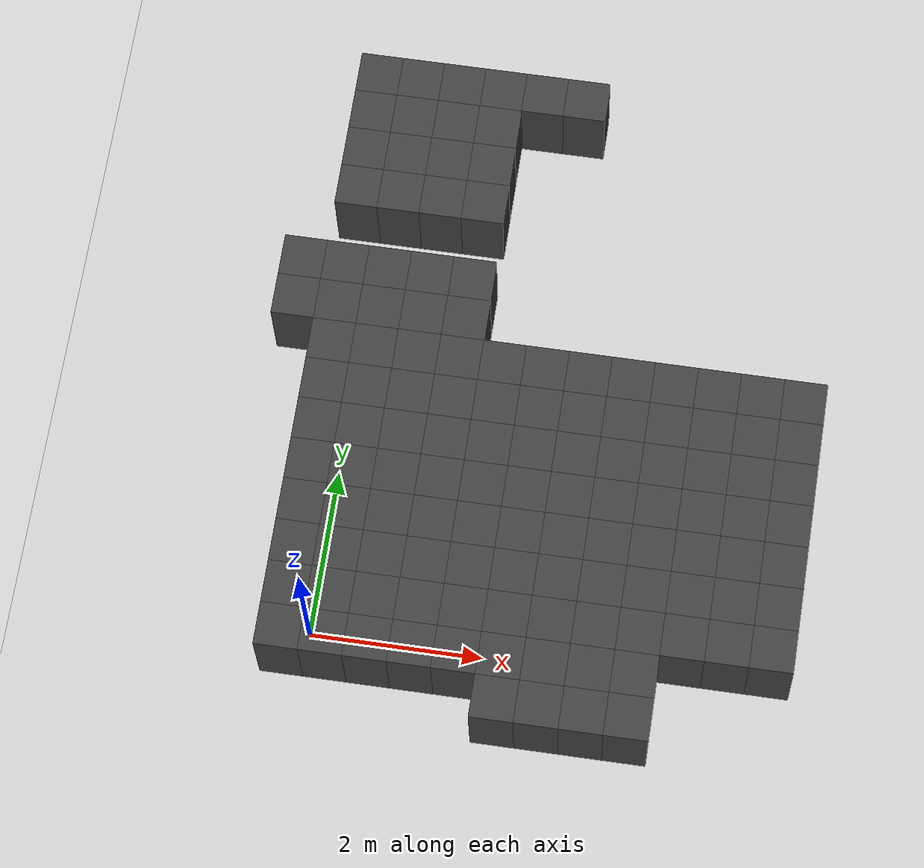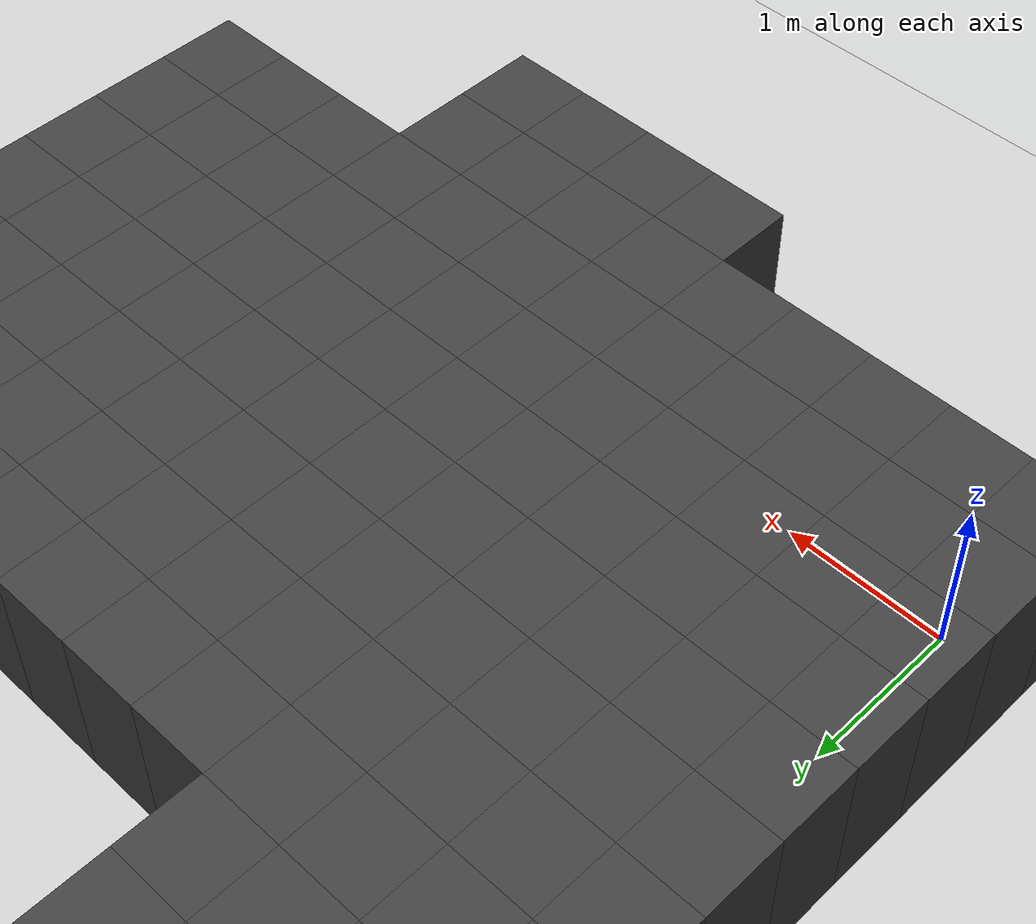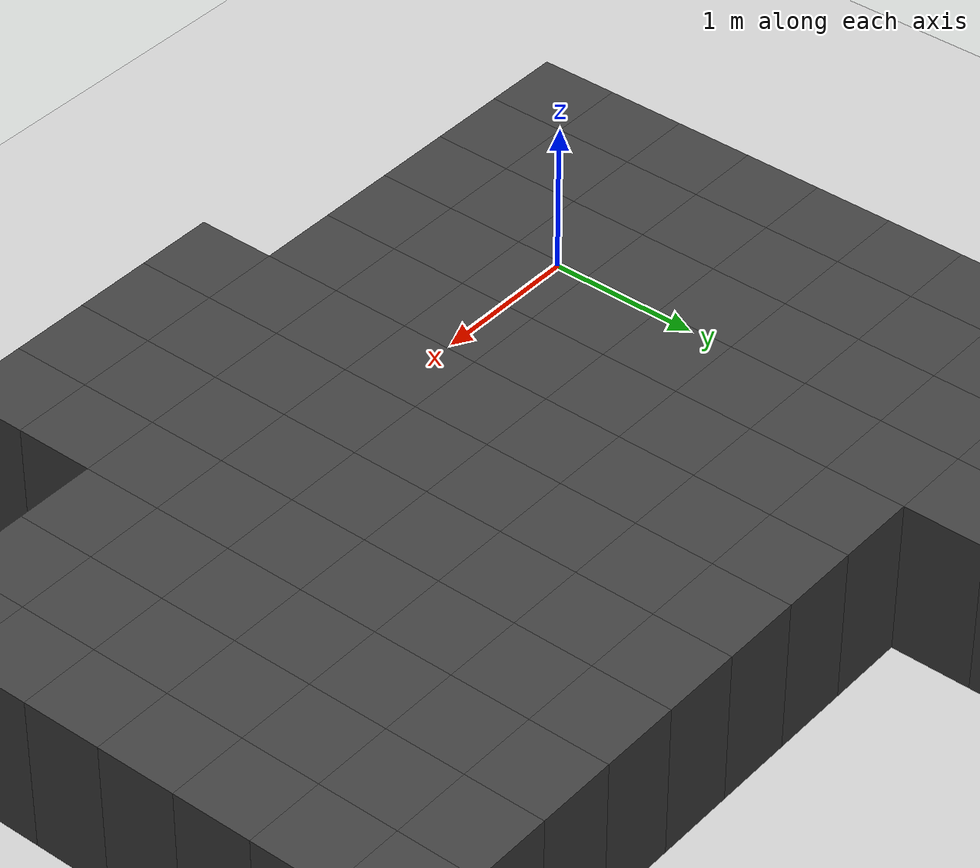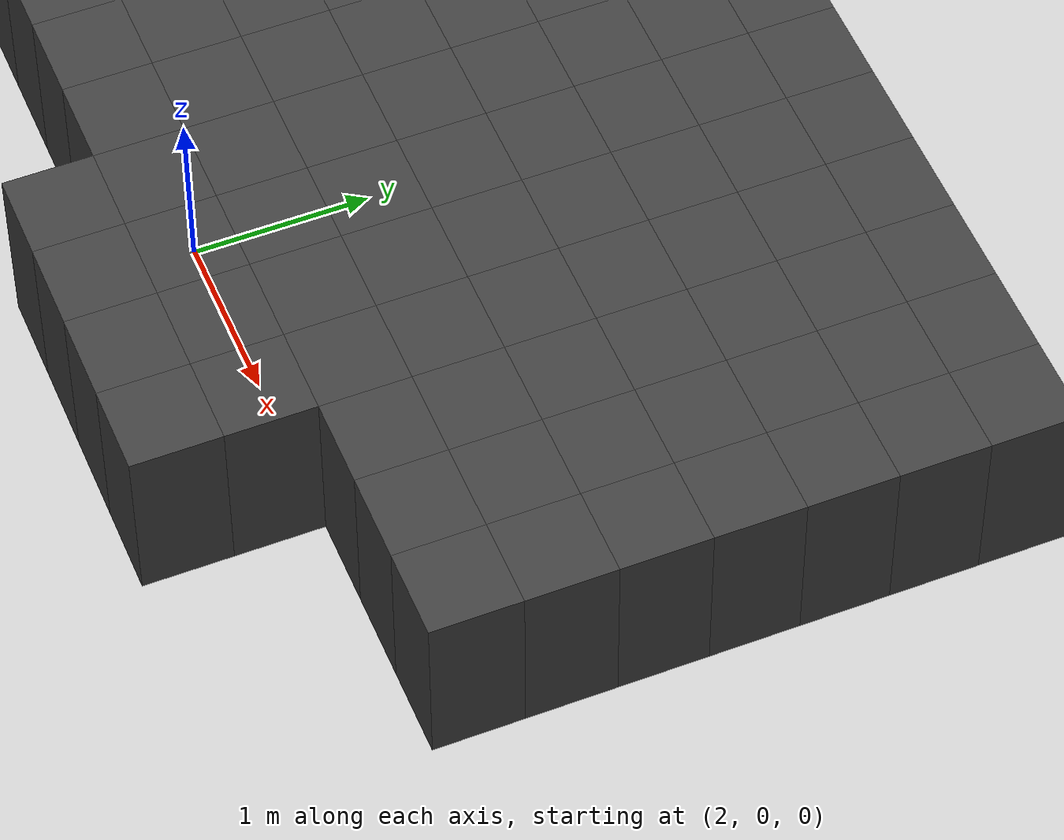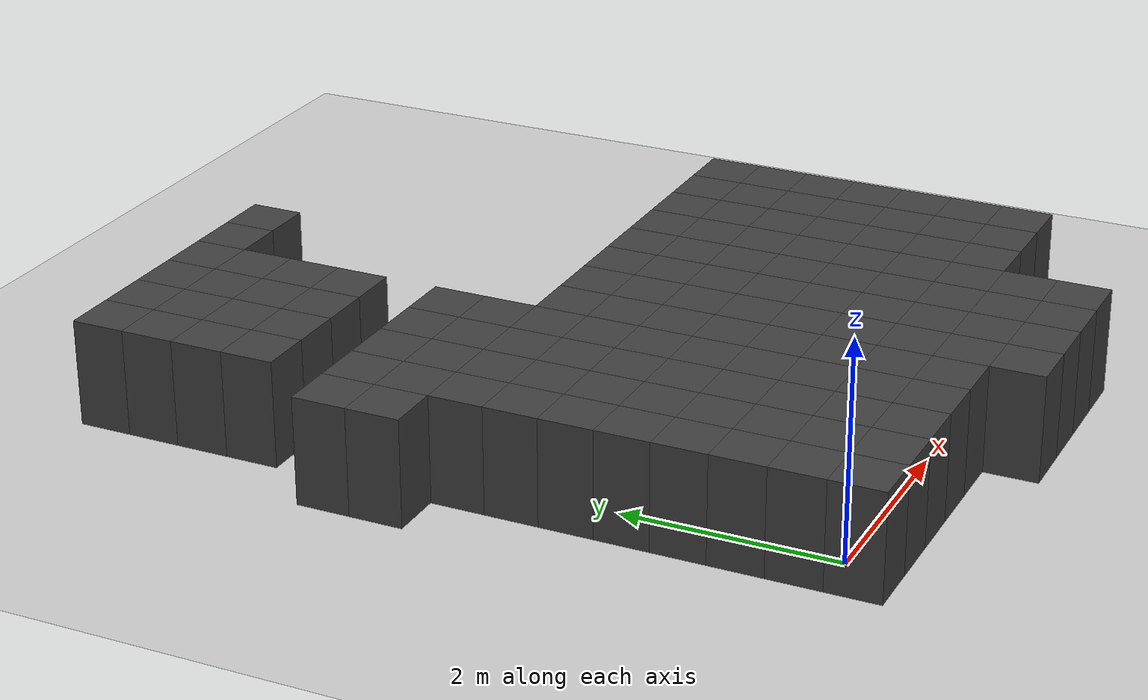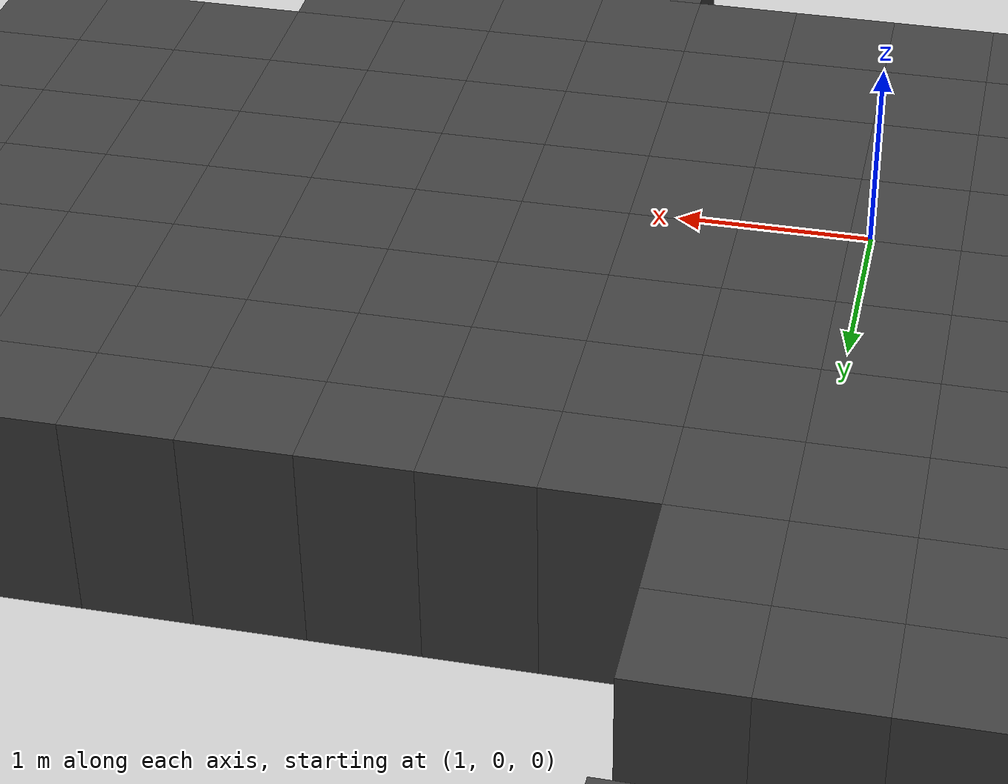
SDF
<sdf version="1.7">
 <world name="map_13364">
  <model name="ground_plane">
   <static>true</static>
   <link name="link">
    <collision name="collision">
     <geometry><plane><normal>0 0 1</normal><size>200 200</size></plane></geometry>
    </collision>
    <visual name="visual">
     <geometry><plane><normal>0 0 1</normal><size>200 200</size></plane></geometry>
     <material><ambient>0.8 0.8 0.8 1</ambient><diffuse>0.8 0.8 0.8 1</diffuse></material>
    </visual>
   </link>
  </model>
  <model name="maze_environment">
   <static>true</static>
   <link name="wall_524">
    <pose>-0.250 6.750 0.500 0 0 0</pose>
    <collision name="col"><geometry><box><size>0.5 0.5 1.0</size></box></geometry></collision>
    <visual name="vis">
     <geometry><box><size>0.5 0.5 1.0</size></box></geometry>
     <material><ambient>0.15 0.15 0.15 1</ambient><diffuse>0.25 0.25 0.25 1</diffuse></material>
    </visual>
   </link>
   <link name="wall_525">
    <pose>0.250 6.750 0.500 0 0 0</pose>
    <collision name="col"><geometry><box><size>0.5 0.5 1.0</size></box></geometry></collision>
    <visual name="vis">
     <geometry><box><size>0.5 0.5 1.0</size></box></geometry>
     <material><ambient>0.15 0.15 0.15 1</ambient><diffuse>0.25 0.25 0.25 1</diffuse></material>
    </visual>
   </link>
   <link name="wall_526">
    <pose>0.750 6.750 0.500 0 0 0</pose>
    <collision name="col"><geometry><box><size>0.5 0.5 1.0</size></box></geometry></collision>
    <visual name="vis">
     <geometry><box><size>0.5 0.5 1.0</size></box></geometry>
     <material><ambient>0.15 0.15 0.15 1</ambient><diffuse>0.25 0.25 0.25 1</diffuse></material>
    </visual>
   </link>
   <link name="wall_527">
    <pose>1.250 6.750 0.500 0 0 0</pose>
    <collision name="col"><geometry><box><size>0.5 0.5 1.0</size></box></geometry></collision>
    <visual name="vis">
     <geometry><box><size>0.5 0.5 1.0</size></box></geometry>
     <material><ambient>0.15 0.15 0.15 1</ambient><diffuse>0.25 0.25 0.25 1</diffuse></material>
    </visual>
   </link>
   <link name="wall_528">
    <pose>1.750 6.750 0.500 0 0 0</pose>
    <collision name="col"><geometry><box><size>0.5 0.5 1.0</size></box></geometry></collision>
    <visual name="vis">
     <geometry><box><size>0.5 0.5 1.0</size></box></geometry>
     <material><ambient>0.15 0.15 0.15 1</ambient><diffuse>0.25 0.25 0.25 1</diffuse></material>
    </visual>
   </link>
   <link name="wall_529">
    <pose>2.250 6.750 0.500 0 0 0</pose>
    <collision name="col"><geometry><box><size>0.5 0.5 1.0</size></box></geometry></collision>
    <visual name="vis">
     <geometry><box><size>0.5 0.5 1.0</size></box></geometry>
     <material><ambient>0.15 0.15 0.15 1</ambient><diffuse>0.25 0.25 0.25 1</diffuse></material>
    </visual>
   </link>
   <link name="wall_559">
    <pose>-0.250 6.250 0.500 0 0 0</pose>
    <collision name="col"><geometry><box><size>0.5 0.5 1.0</size></box></geometry></collision>
    <visual name="vis">
     <geometry><box><size>0.5 0.5 1.0</size></box></geometry>
     <material><ambient>0.15 0.15 0.15 1</ambient><diffuse>0.25 0.25 0.25 1</diffuse></material>
    </visual>
   </link>
   <link name="wall_560">
    <pose>0.250 6.250 0.500 0 0 0</pose>
    <collision name="col"><geometry><box><size>0.5 0.5 1.0</size></box></geometry></collision>
    <visual name="vis">
     <geometry><box><size>0.5 0.5 1.0</size></box></geometry>
     <material><ambient>0.15 0.15 0.15 1</ambient><diffuse>0.25 0.25 0.25 1</diffuse></material>
    </visual>
   </link>
   <link name="wall_561">
    <pose>0.750 6.250 0.500 0 0 0</pose>
    <collision name="col"><geometry><box><size>0.5 0.5 1.0</size></box></geometry></collision>
    <visual name="vis">
     <geometry><box><size>0.5 0.5 1.0</size></box></geometry>
     <material><ambient>0.15 0.15 0.15 1</ambient><diffuse>0.25 0.25 0.25 1</diffuse></material>
    </visual>
   </link>
   <link name="wall_562">
    <pose>1.250 6.250 0.500 0 0 0</pose>
    <collision name="col"><geometry><box><size>0.5 0.5 1.0</size></box></geometry></collision>
    <visual name="vis">
     <geometry><box><size>0.5 0.5 1.0</size></box></geometry>
     <material><ambient>0.15 0.15 0.15 1</ambient><diffuse>0.25 0.25 0.25 1</diffuse></material>
    </visual>
   </link>
   <link name="wall_585">
    <pose>-0.250 5.750 0.500 0 0 0</pose>
    <collision name="col"><geometry><box><size>0.5 0.5 1.0</size></box></geometry></collision>
    <visual name="vis">
     <geometry><box><size>0.5 0.5 1.0</size></box></geometry>
     <material><ambient>0.15 0.15 0.15 1</ambient><diffuse>0.25 0.25 0.25 1</diffuse></material>
    </visual>
   </link>
   <link name="wall_586">
    <pose>0.250 5.750 0.500 0 0 0</pose>
    <collision name="col"><geometry><box><size>0.5 0.5 1.0</size></box></geometry></collision>
    <visual name="vis">
     <geometry><box><size>0.5 0.5 1.0</size></box></geometry>
     <material><ambient>0.15 0.15 0.15 1</ambient><diffuse>0.25 0.25 0.25 1</diffuse></material>
    </visual>
   </link>
   <link name="wall_587">
    <pose>0.750 5.750 0.500 0 0 0</pose>
    <collision name="col"><geometry><box><size>0.5 0.5 1.0</size></box></geometry></collision>
    <visual name="vis">
     <geometry><box><size>0.5 0.5 1.0</size></box></geometry>
     <material><ambient>0.15 0.15 0.15 1</ambient><diffuse>0.25 0.25 0.25 1</diffuse></material>
    </visual>
   </link>
   <link name="wall_588">
    <pose>1.250 5.750 0.500 0 0 0</pose>
    <collision name="col"><geometry><box><size>0.5 0.5 1.0</size></box></geometry></collision>
    <visual name="vis">
     <geometry><box><size>0.5 0.5 1.0</size></box></geometry>
     <material><ambient>0.15 0.15 0.15 1</ambient><diffuse>0.25 0.25 0.25 1</diffuse></material>
    </visual>
   </link>
   <link name="wall_612">
    <pose>-0.250 5.250 0.500 0 0 0</pose>
    <collision name="col"><geometry><box><size>0.5 0.5 1.0</size></box></geometry></collision>
    <visual name="vis">
     <geometry><box><size>0.5 0.5 1.0</size></box></geometry>
     <material><ambient>0.15 0.15 0.15 1</ambient><diffuse>0.25 0.25 0.25 1</diffuse></material>
    </visual>
   </link>
   <link name="wall_613">
    <pose>0.250 5.250 0.500 0 0 0</pose>
    <collision name="col"><geometry><box><size>0.5 0.5 1.0</size></box></geometry></collision>
    <visual name="vis">
     <geometry><box><size>0.5 0.5 1.0</size></box></geometry>
     <material><ambient>0.15 0.15 0.15 1</ambient><diffuse>0.25 0.25 0.25 1</diffuse></material>
    </visual>
   </link>
   <link name="wall_614">
    <pose>0.750 5.250 0.500 0 0 0</pose>
    <collision name="col"><geometry><box><size>0.5 0.5 1.0</size></box></geometry></collision>
    <visual name="vis">
     <geometry><box><size>0.5 0.5 1.0</size></box></geometry>
     <material><ambient>0.15 0.15 0.15 1</ambient><diffuse>0.25 0.25 0.25 1</diffuse></material>
    </visual>
   </link>
   <link name="wall_615">
    <pose>1.250 5.250 0.500 0 0 0</pose>
    <collision name="col"><geometry><box><size>0.5 0.5 1.0</size></box></geometry></collision>
    <visual name="vis">
     <geometry><box><size>0.5 0.5 1.0</size></box></geometry>
     <material><ambient>0.15 0.15 0.15 1</ambient><diffuse>0.25 0.25 0.25 1</diffuse></material>
    </visual>
   </link>
   <link name="wall_665">
    <pose>-0.750 4.250 0.500 0 0 0</pose>
    <collision name="col"><geometry><box><size>0.5 0.5 1.0</size></box></geometry></collision>
    <visual name="vis">
     <geometry><box><size>0.5 0.5 1.0</size></box></geometry>
     <material><ambient>0.15 0.15 0.15 1</ambient><diffuse>0.25 0.25 0.25 1</diffuse></material>
    </visual>
   </link>
   <link name="wall_666">
    <pose>-0.250 4.250 0.500 0 0 0</pose>
    <collision name="col"><geometry><box><size>0.5 0.5 1.0</size></box></geometry></collision>
    <visual name="vis">
     <geometry><box><size>0.5 0.5 1.0</size></box></geometry>
     <material><ambient>0.15 0.15 0.15 1</ambient><diffuse>0.25 0.25 0.25 1</diffuse></material>
    </visual>
   </link>
   <link name="wall_667">
    <pose>0.250 4.250 0.500 0 0 0</pose>
    <collision name="col"><geometry><box><size>0.5 0.5 1.0</size></box></geometry></collision>
    <visual name="vis">
     <geometry><box><size>0.5 0.5 1.0</size></box></geometry>
     <material><ambient>0.15 0.15 0.15 1</ambient><diffuse>0.25 0.25 0.25 1</diffuse></material>
    </visual>
   </link>
   <link name="wall_668">
    <pose>0.750 4.250 0.500 0 0 0</pose>
    <collision name="col"><geometry><box><size>0.5 0.5 1.0</size></box></geometry></collision>
    <visual name="vis">
     <geometry><box><size>0.5 0.5 1.0</size></box></geometry>
     <material><ambient>0.15 0.15 0.15 1</ambient><diffuse>0.25 0.25 0.25 1</diffuse></material>
    </visual>
   </link>
   <link name="wall_669">
    <pose>1.250 4.250 0.500 0 0 0</pose>
    <collision name="col"><geometry><box><size>0.5 0.5 1.0</size></box></geometry></collision>
    <visual name="vis">
     <geometry><box><size>0.5 0.5 1.0</size></box></geometry>
     <material><ambient>0.15 0.15 0.15 1</ambient><diffuse>0.25 0.25 0.25 1</diffuse></material>
    </visual>
   </link>
   <link name="wall_697">
    <pose>-0.750 3.750 0.500 0 0 0</pose>
    <collision name="col"><geometry><box><size>0.5 0.5 1.0</size></box></geometry></collision>
    <visual name="vis">
     <geometry><box><size>0.5 0.5 1.0</size></box></geometry>
     <material><ambient>0.15 0.15 0.15 1</ambient><diffuse>0.25 0.25 0.25 1</diffuse></material>
    </visual>
   </link>
   <link name="wall_698">
    <pose>-0.250 3.750 0.500 0 0 0</pose>
    <collision name="col"><geometry><box><size>0.5 0.5 1.0</size></box></geometry></collision>
    <visual name="vis">
     <geometry><box><size>0.5 0.5 1.0</size></box></geometry>
     <material><ambient>0.15 0.15 0.15 1</ambient><diffuse>0.25 0.25 0.25 1</diffuse></material>
    </visual>
   </link>
   <link name="wall_699">
    <pose>0.250 3.750 0.500 0 0 0</pose>
    <collision name="col"><geometry><box><size>0.5 0.5 1.0</size></box></geometry></collision>
    <visual name="vis">
     <geometry><box><size>0.5 0.5 1.0</size></box></geometry>
     <material><ambient>0.15 0.15 0.15 1</ambient><diffuse>0.25 0.25 0.25 1</diffuse></material>
    </visual>
   </link>
   <link name="wall_700">
    <pose>0.750 3.750 0.500 0 0 0</pose>
    <collision name="col"><geometry><box><size>0.5 0.5 1.0</size></box></geometry></collision>
    <visual name="vis">
     <geometry><box><size>0.5 0.5 1.0</size></box></geometry>
     <material><ambient>0.15 0.15 0.15 1</ambient><diffuse>0.25 0.25 0.25 1</diffuse></material>
    </visual>
   </link>
   <link name="wall_701">
    <pose>1.250 3.750 0.500 0 0 0</pose>
    <collision name="col"><geometry><box><size>0.5 0.5 1.0</size></box></geometry></collision>
    <visual name="vis">
     <geometry><box><size>0.5 0.5 1.0</size></box></geometry>
     <material><ambient>0.15 0.15 0.15 1</ambient><diffuse>0.25 0.25 0.25 1</diffuse></material>
    </visual>
   </link>
   <link name="wall_723">
    <pose>-0.250 3.250 0.500 0 0 0</pose>
    <collision name="col"><geometry><box><size>0.5 0.5 1.0</size></box></geometry></collision>
    <visual name="vis">
     <geometry><box><size>0.5 0.5 1.0</size></box></geometry>
     <material><ambient>0.15 0.15 0.15 1</ambient><diffuse>0.25 0.25 0.25 1</diffuse></material>
    </visual>
   </link>
   <link name="wall_724">
    <pose>0.250 3.250 0.500 0 0 0</pose>
    <collision name="col"><geometry><box><size>0.5 0.5 1.0</size></box></geometry></collision>
    <visual name="vis">
     <geometry><box><size>0.5 0.5 1.0</size></box></geometry>
     <material><ambient>0.15 0.15 0.15 1</ambient><diffuse>0.25 0.25 0.25 1</diffuse></material>
    </visual>
   </link>
   <link name="wall_725">
    <pose>0.750 3.250 0.500 0 0 0</pose>
    <collision name="col"><geometry><box><size>0.5 0.5 1.0</size></box></geometry></collision>
    <visual name="vis">
     <geometry><box><size>0.5 0.5 1.0</size></box></geometry>
     <material><ambient>0.15 0.15 0.15 1</ambient><diffuse>0.25 0.25 0.25 1</diffuse></material>
    </visual>
   </link>
   <link name="wall_726">
    <pose>1.250 3.250 0.500 0 0 0</pose>
    <collision name="col"><geometry><box><size>0.5 0.5 1.0</size></box></geometry></collision>
    <visual name="vis">
     <geometry><box><size>0.5 0.5 1.0</size></box></geometry>
     <material><ambient>0.15 0.15 0.15 1</ambient><diffuse>0.25 0.25 0.25 1</diffuse></material>
    </visual>
   </link>
   <link name="wall_727">
    <pose>1.750 3.250 0.500 0 0 0</pose>
    <collision name="col"><geometry><box><size>0.5 0.5 1.0</size></box></geometry></collision>
    <visual name="vis">
     <geometry><box><size>0.5 0.5 1.0</size></box></geometry>
     <material><ambient>0.15 0.15 0.15 1</ambient><diffuse>0.25 0.25 0.25 1</diffuse></material>
    </visual>
   </link>
   <link name="wall_728">
    <pose>2.250 3.250 0.500 0 0 0</pose>
    <collision name="col"><geometry><box><size>0.5 0.5 1.0</size></box></geometry></collision>
    <visual name="vis">
     <geometry><box><size>0.5 0.5 1.0</size></box></geometry>
     <material><ambient>0.15 0.15 0.15 1</ambient><diffuse>0.25 0.25 0.25 1</diffuse></material>
    </visual>
   </link>
   <link name="wall_729">
    <pose>2.750 3.250 0.500 0 0 0</pose>
    <collision name="col"><geometry><box><size>0.5 0.5 1.0</size></box></geometry></collision>
    <visual name="vis">
     <geometry><box><size>0.5 0.5 1.0</size></box></geometry>
     <material><ambient>0.15 0.15 0.15 1</ambient><diffuse>0.25 0.25 0.25 1</diffuse></material>
    </visual>
   </link>
   <link name="wall_730">
    <pose>3.250 3.250 0.500 0 0 0</pose>
    <collision name="col"><geometry><box><size>0.5 0.5 1.0</size></box></geometry></collision>
    <visual name="vis">
     <geometry><box><size>0.5 0.5 1.0</size></box></geometry>
     <material><ambient>0.15 0.15 0.15 1</ambient><diffuse>0.25 0.25 0.25 1</diffuse></material>
    </visual>
   </link>
   <link name="wall_731">
    <pose>3.750 3.250 0.500 0 0 0</pose>
    <collision name="col"><geometry><box><size>0.5 0.5 1.0</size></box></geometry></collision>
    <visual name="vis">
     <geometry><box><size>0.5 0.5 1.0</size></box></geometry>
     <material><ambient>0.15 0.15 0.15 1</ambient><diffuse>0.25 0.25 0.25 1</diffuse></material>
    </visual>
   </link>
   <link name="wall_732">
    <pose>4.250 3.250 0.500 0 0 0</pose>
    <collision name="col"><geometry><box><size>0.5 0.5 1.0</size></box></geometry></collision>
    <visual name="vis">
     <geometry><box><size>0.5 0.5 1.0</size></box></geometry>
     <material><ambient>0.15 0.15 0.15 1</ambient><diffuse>0.25 0.25 0.25 1</diffuse></material>
    </visual>
   </link>
   <link name="wall_733">
    <pose>4.750 3.250 0.500 0 0 0</pose>
    <collision name="col"><geometry><box><size>0.5 0.5 1.0</size></box></geometry></collision>
    <visual name="vis">
     <geometry><box><size>0.5 0.5 1.0</size></box></geometry>
     <material><ambient>0.15 0.15 0.15 1</ambient><diffuse>0.25 0.25 0.25 1</diffuse></material>
    </visual>
   </link>
   <link name="wall_734">
    <pose>5.250 3.250 0.500 0 0 0</pose>
    <collision name="col"><geometry><box><size>0.5 0.5 1.0</size></box></geometry></collision>
    <visual name="vis">
     <geometry><box><size>0.5 0.5 1.0</size></box></geometry>
     <material><ambient>0.15 0.15 0.15 1</ambient><diffuse>0.25 0.25 0.25 1</diffuse></material>
    </visual>
   </link>
   <link name="wall_756">
    <pose>-0.250 2.750 0.500 0 0 0</pose>
    <collision name="col"><geometry><box><size>0.5 0.5 1.0</size></box></geometry></collision>
    <visual name="vis">
     <geometry><box><size>0.5 0.5 1.0</size></box></geometry>
     <material><ambient>0.15 0.15 0.15 1</ambient><diffuse>0.25 0.25 0.25 1</diffuse></material>
    </visual>
   </link>
   <link name="wall_757">
    <pose>0.250 2.750 0.500 0 0 0</pose>
    <collision name="col"><geometry><box><size>0.5 0.5 1.0</size></box></geometry></collision>
    <visual name="vis">
     <geometry><box><size>0.5 0.5 1.0</size></box></geometry>
     <material><ambient>0.15 0.15 0.15 1</ambient><diffuse>0.25 0.25 0.25 1</diffuse></material>
    </visual>
   </link>
   <link name="wall_758">
    <pose>0.750 2.750 0.500 0 0 0</pose>
    <collision name="col"><geometry><box><size>0.5 0.5 1.0</size></box></geometry></collision>
    <visual name="vis">
     <geometry><box><size>0.5 0.5 1.0</size></box></geometry>
     <material><ambient>0.15 0.15 0.15 1</ambient><diffuse>0.25 0.25 0.25 1</diffuse></material>
    </visual>
   </link>
   <link name="wall_759">
    <pose>1.250 2.750 0.500 0 0 0</pose>
    <collision name="col"><geometry><box><size>0.5 0.5 1.0</size></box></geometry></collision>
    <visual name="vis">
     <geometry><box><size>0.5 0.5 1.0</size></box></geometry>
     <material><ambient>0.15 0.15 0.15 1</ambient><diffuse>0.25 0.25 0.25 1</diffuse></material>
    </visual>
   </link>
   <link name="wall_760">
    <pose>1.750 2.750 0.500 0 0 0</pose>
    <collision name="col"><geometry><box><size>0.5 0.5 1.0</size></box></geometry></collision>
    <visual name="vis">
     <geometry><box><size>0.5 0.5 1.0</size></box></geometry>
     <material><ambient>0.15 0.15 0.15 1</ambient><diffuse>0.25 0.25 0.25 1</diffuse></material>
    </visual>
   </link>
   <link name="wall_761">
    <pose>2.250 2.750 0.500 0 0 0</pose>
    <collision name="col"><geometry><box><size>0.5 0.5 1.0</size></box></geometry></collision>
    <visual name="vis">
     <geometry><box><size>0.5 0.5 1.0</size></box></geometry>
     <material><ambient>0.15 0.15 0.15 1</ambient><diffuse>0.25 0.25 0.25 1</diffuse></material>
    </visual>
   </link>
   <link name="wall_762">
    <pose>2.750 2.750 0.500 0 0 0</pose>
    <collision name="col"><geometry><box><size>0.5 0.5 1.0</size></box></geometry></collision>
    <visual name="vis">
     <geometry><box><size>0.5 0.5 1.0</size></box></geometry>
     <material><ambient>0.15 0.15 0.15 1</ambient><diffuse>0.25 0.25 0.25 1</diffuse></material>
    </visual>
   </link>
   <link name="wall_763">
    <pose>3.250 2.750 0.500 0 0 0</pose>
    <collision name="col"><geometry><box><size>0.5 0.5 1.0</size></box></geometry></collision>
    <visual name="vis">
     <geometry><box><size>0.5 0.5 1.0</size></box></geometry>
     <material><ambient>0.15 0.15 0.15 1</ambient><diffuse>0.25 0.25 0.25 1</diffuse></material>
    </visual>
   </link>
   <link name="wall_764">
    <pose>3.750 2.750 0.500 0 0 0</pose>
    <collision name="col"><geometry><box><size>0.5 0.5 1.0</size></box></geometry></collision>
    <visual name="vis">
     <geometry><box><size>0.5 0.5 1.0</size></box></geometry>
     <material><ambient>0.15 0.15 0.15 1</ambient><diffuse>0.25 0.25 0.25 1</diffuse></material>
    </visual>
   </link>
   <link name="wall_765">
    <pose>4.250 2.750 0.500 0 0 0</pose>
    <collision name="col"><geometry><box><size>0.5 0.5 1.0</size></box></geometry></collision>
    <visual name="vis">
     <geometry><box><size>0.5 0.5 1.0</size></box></geometry>
     <material><ambient>0.15 0.15 0.15 1</ambient><diffuse>0.25 0.25 0.25 1</diffuse></material>
    </visual>
   </link>
   <link name="wall_766">
    <pose>4.750 2.750 0.500 0 0 0</pose>
    <collision name="col"><geometry><box><size>0.5 0.5 1.0</size></box></geometry></collision>
    <visual name="vis">
     <geometry><box><size>0.5 0.5 1.0</size></box></geometry>
     <material><ambient>0.15 0.15 0.15 1</ambient><diffuse>0.25 0.25 0.25 1</diffuse></material>
    </visual>
   </link>
   <link name="wall_767">
    <pose>5.250 2.750 0.500 0 0 0</pose>
    <collision name="col"><geometry><box><size>0.5 0.5 1.0</size></box></geometry></collision>
    <visual name="vis">
     <geometry><box><size>0.5 0.5 1.0</size></box></geometry>
     <material><ambient>0.15 0.15 0.15 1</ambient><diffuse>0.25 0.25 0.25 1</diffuse></material>
    </visual>
   </link>
   <link name="wall_787">
    <pose>-0.250 2.250 0.500 0 0 0</pose>
    <collision name="col"><geometry><box><size>0.5 0.5 1.0</size></box></geometry></collision>
    <visual name="vis">
     <geometry><box><size>0.5 0.5 1.0</size></box></geometry>
     <material><ambient>0.15 0.15 0.15 1</ambient><diffuse>0.25 0.25 0.25 1</diffuse></material>
    </visual>
   </link>
   <link name="wall_788">
    <pose>0.250 2.250 0.500 0 0 0</pose>
    <collision name="col"><geometry><box><size>0.5 0.5 1.0</size></box></geometry></collision>
    <visual name="vis">
     <geometry><box><size>0.5 0.5 1.0</size></box></geometry>
     <material><ambient>0.15 0.15 0.15 1</ambient><diffuse>0.25 0.25 0.25 1</diffuse></material>
    </visual>
   </link>
   <link name="wall_789">
    <pose>0.750 2.250 0.500 0 0 0</pose>
    <collision name="col"><geometry><box><size>0.5 0.5 1.0</size></box></geometry></collision>
    <visual name="vis">
     <geometry><box><size>0.5 0.5 1.0</size></box></geometry>
     <material><ambient>0.15 0.15 0.15 1</ambient><diffuse>0.25 0.25 0.25 1</diffuse></material>
    </visual>
   </link>
   <link name="wall_790">
    <pose>1.250 2.250 0.500 0 0 0</pose>
    <collision name="col"><geometry><box><size>0.5 0.5 1.0</size></box></geometry></collision>
    <visual name="vis">
     <geometry><box><size>0.5 0.5 1.0</size></box></geometry>
     <material><ambient>0.15 0.15 0.15 1</ambient><diffuse>0.25 0.25 0.25 1</diffuse></material>
    </visual>
   </link>
   <link name="wall_791">
    <pose>1.750 2.250 0.500 0 0 0</pose>
    <collision name="col"><geometry><box><size>0.5 0.5 1.0</size></box></geometry></collision>
    <visual name="vis">
     <geometry><box><size>0.5 0.5 1.0</size></box></geometry>
     <material><ambient>0.15 0.15 0.15 1</ambient><diffuse>0.25 0.25 0.25 1</diffuse></material>
    </visual>
   </link>
   <link name="wall_792">
    <pose>2.250 2.250 0.500 0 0 0</pose>
    <collision name="col"><geometry><box><size>0.5 0.5 1.0</size></box></geometry></collision>
    <visual name="vis">
     <geometry><box><size>0.5 0.5 1.0</size></box></geometry>
     <material><ambient>0.15 0.15 0.15 1</ambient><diffuse>0.25 0.25 0.25 1</diffuse></material>
    </visual>
   </link>
   <link name="wall_793">
    <pose>2.750 2.250 0.500 0 0 0</pose>
    <collision name="col"><geometry><box><size>0.5 0.5 1.0</size></box></geometry></collision>
    <visual name="vis">
     <geometry><box><size>0.5 0.5 1.0</size></box></geometry>
     <material><ambient>0.15 0.15 0.15 1</ambient><diffuse>0.25 0.25 0.25 1</diffuse></material>
    </visual>
   </link>
   <link name="wall_794">
    <pose>3.250 2.250 0.500 0 0 0</pose>
    <collision name="col"><geometry><box><size>0.5 0.5 1.0</size></box></geometry></collision>
    <visual name="vis">
     <geometry><box><size>0.5 0.5 1.0</size></box></geometry>
     <material><ambient>0.15 0.15 0.15 1</ambient><diffuse>0.25 0.25 0.25 1</diffuse></material>
    </visual>
   </link>
   <link name="wall_795">
    <pose>3.750 2.250 0.500 0 0 0</pose>
    <collision name="col"><geometry><box><size>0.5 0.5 1.0</size></box></geometry></collision>
    <visual name="vis">
     <geometry><box><size>0.5 0.5 1.0</size></box></geometry>
     <material><ambient>0.15 0.15 0.15 1</ambient><diffuse>0.25 0.25 0.25 1</diffuse></material>
    </visual>
   </link>
   <link name="wall_796">
    <pose>4.250 2.250 0.500 0 0 0</pose>
    <collision name="col"><geometry><box><size>0.5 0.5 1.0</size></box></geometry></collision>
    <visual name="vis">
     <geometry><box><size>0.5 0.5 1.0</size></box></geometry>
     <material><ambient>0.15 0.15 0.15 1</ambient><diffuse>0.25 0.25 0.25 1</diffuse></material>
    </visual>
   </link>
   <link name="wall_797">
    <pose>4.750 2.250 0.500 0 0 0</pose>
    <collision name="col"><geometry><box><size>0.5 0.5 1.0</size></box></geometry></collision>
    <visual name="vis">
     <geometry><box><size>0.5 0.5 1.0</size></box></geometry>
     <material><ambient>0.15 0.15 0.15 1</ambient><diffuse>0.25 0.25 0.25 1</diffuse></material>
    </visual>
   </link>
   <link name="wall_798">
    <pose>5.250 2.250 0.500 0 0 0</pose>
    <collision name="col"><geometry><box><size>0.5 0.5 1.0</size></box></geometry></collision>
    <visual name="vis">
     <geometry><box><size>0.5 0.5 1.0</size></box></geometry>
     <material><ambient>0.15 0.15 0.15 1</ambient><diffuse>0.25 0.25 0.25 1</diffuse></material>
    </visual>
   </link>
   <link name="wall_818">
    <pose>-0.250 1.750 0.500 0 0 0</pose>
    <collision name="col"><geometry><box><size>0.5 0.5 1.0</size></box></geometry></collision>
    <visual name="vis">
     <geometry><box><size>0.5 0.5 1.0</size></box></geometry>
     <material><ambient>0.15 0.15 0.15 1</ambient><diffuse>0.25 0.25 0.25 1</diffuse></material>
    </visual>
   </link>
   <link name="wall_819">
    <pose>0.250 1.750 0.500 0 0 0</pose>
    <collision name="col"><geometry><box><size>0.5 0.5 1.0</size></box></geometry></collision>
    <visual name="vis">
     <geometry><box><size>0.5 0.5 1.0</size></box></geometry>
     <material><ambient>0.15 0.15 0.15 1</ambient><diffuse>0.25 0.25 0.25 1</diffuse></material>
    </visual>
   </link>
   <link name="wall_820">
    <pose>0.750 1.750 0.500 0 0 0</pose>
    <collision name="col"><geometry><box><size>0.5 0.5 1.0</size></box></geometry></collision>
    <visual name="vis">
     <geometry><box><size>0.5 0.5 1.0</size></box></geometry>
     <material><ambient>0.15 0.15 0.15 1</ambient><diffuse>0.25 0.25 0.25 1</diffuse></material>
    </visual>
   </link>
   <link name="wall_821">
    <pose>1.250 1.750 0.500 0 0 0</pose>
    <collision name="col"><geometry><box><size>0.5 0.5 1.0</size></box></geometry></collision>
    <visual name="vis">
     <geometry><box><size>0.5 0.5 1.0</size></box></geometry>
     <material><ambient>0.15 0.15 0.15 1</ambient><diffuse>0.25 0.25 0.25 1</diffuse></material>
    </visual>
   </link>
   <link name="wall_822">
    <pose>1.750 1.750 0.500 0 0 0</pose>
    <collision name="col"><geometry><box><size>0.5 0.5 1.0</size></box></geometry></collision>
    <visual name="vis">
     <geometry><box><size>0.5 0.5 1.0</size></box></geometry>
     <material><ambient>0.15 0.15 0.15 1</ambient><diffuse>0.25 0.25 0.25 1</diffuse></material>
    </visual>
   </link>
   <link name="wall_823">
    <pose>2.250 1.750 0.500 0 0 0</pose>
    <collision name="col"><geometry><box><size>0.5 0.5 1.0</size></box></geometry></collision>
    <visual name="vis">
     <geometry><box><size>0.5 0.5 1.0</size></box></geometry>
     <material><ambient>0.15 0.15 0.15 1</ambient><diffuse>0.25 0.25 0.25 1</diffuse></material>
    </visual>
   </link>
   <link name="wall_824">
    <pose>2.750 1.750 0.500 0 0 0</pose>
    <collision name="col"><geometry><box><size>0.5 0.5 1.0</size></box></geometry></collision>
    <visual name="vis">
     <geometry><box><size>0.5 0.5 1.0</size></box></geometry>
     <material><ambient>0.15 0.15 0.15 1</ambient><diffuse>0.25 0.25 0.25 1</diffuse></material>
    </visual>
   </link>
   <link name="wall_825">
    <pose>3.250 1.750 0.500 0 0 0</pose>
    <collision name="col"><geometry><box><size>0.5 0.5 1.0</size></box></geometry></collision>
    <visual name="vis">
     <geometry><box><size>0.5 0.5 1.0</size></box></geometry>
     <material><ambient>0.15 0.15 0.15 1</ambient><diffuse>0.25 0.25 0.25 1</diffuse></material>
    </visual>
   </link>
   <link name="wall_826">
    <pose>3.750 1.750 0.500 0 0 0</pose>
    <collision name="col"><geometry><box><size>0.5 0.5 1.0</size></box></geometry></collision>
    <visual name="vis">
     <geometry><box><size>0.5 0.5 1.0</size></box></geometry>
     <material><ambient>0.15 0.15 0.15 1</ambient><diffuse>0.25 0.25 0.25 1</diffuse></material>
    </visual>
   </link>
   <link name="wall_827">
    <pose>4.250 1.750 0.500 0 0 0</pose>
    <collision name="col"><geometry><box><size>0.5 0.5 1.0</size></box></geometry></collision>
    <visual name="vis">
     <geometry><box><size>0.5 0.5 1.0</size></box></geometry>
     <material><ambient>0.15 0.15 0.15 1</ambient><diffuse>0.25 0.25 0.25 1</diffuse></material>
    </visual>
   </link>
   <link name="wall_828">
    <pose>4.750 1.750 0.500 0 0 0</pose>
    <collision name="col"><geometry><box><size>0.5 0.5 1.0</size></box></geometry></collision>
    <visual name="vis">
     <geometry><box><size>0.5 0.5 1.0</size></box></geometry>
     <material><ambient>0.15 0.15 0.15 1</ambient><diffuse>0.25 0.25 0.25 1</diffuse></material>
    </visual>
   </link>
   <link name="wall_829">
    <pose>5.250 1.750 0.500 0 0 0</pose>
    <collision name="col"><geometry><box><size>0.5 0.5 1.0</size></box></geometry></collision>
    <visual name="vis">
     <geometry><box><size>0.5 0.5 1.0</size></box></geometry>
     <material><ambient>0.15 0.15 0.15 1</ambient><diffuse>0.25 0.25 0.25 1</diffuse></material>
    </visual>
   </link>
   <link name="wall_840">
    <pose>-0.250 1.250 0.500 0 0 0</pose>
    <collision name="col"><geometry><box><size>0.5 0.5 1.0</size></box></geometry></collision>
    <visual name="vis">
     <geometry><box><size>0.5 0.5 1.0</size></box></geometry>
     <material><ambient>0.15 0.15 0.15 1</ambient><diffuse>0.25 0.25 0.25 1</diffuse></material>
    </visual>
   </link>
   <link name="wall_841">
    <pose>0.250 1.250 0.500 0 0 0</pose>
    <collision name="col"><geometry><box><size>0.5 0.5 1.0</size></box></geometry></collision>
    <visual name="vis">
     <geometry><box><size>0.5 0.5 1.0</size></box></geometry>
     <material><ambient>0.15 0.15 0.15 1</ambient><diffuse>0.25 0.25 0.25 1</diffuse></material>
    </visual>
   </link>
   <link name="wall_842">
    <pose>0.750 1.250 0.500 0 0 0</pose>
    <collision name="col"><geometry><box><size>0.5 0.5 1.0</size></box></geometry></collision>
    <visual name="vis">
     <geometry><box><size>0.5 0.5 1.0</size></box></geometry>
     <material><ambient>0.15 0.15 0.15 1</ambient><diffuse>0.25 0.25 0.25 1</diffuse></material>
    </visual>
   </link>
   <link name="wall_843">
    <pose>1.250 1.250 0.500 0 0 0</pose>
    <collision name="col"><geometry><box><size>0.5 0.5 1.0</size></box></geometry></collision>
    <visual name="vis">
     <geometry><box><size>0.5 0.5 1.0</size></box></geometry>
     <material><ambient>0.15 0.15 0.15 1</ambient><diffuse>0.25 0.25 0.25 1</diffuse></material>
    </visual>
   </link>
   <link name="wall_844">
    <pose>1.750 1.250 0.500 0 0 0</pose>
    <collision name="col"><geometry><box><size>0.5 0.5 1.0</size></box></geometry></collision>
    <visual name="vis">
     <geometry><box><size>0.5 0.5 1.0</size></box></geometry>
     <material><ambient>0.15 0.15 0.15 1</ambient><diffuse>0.25 0.25 0.25 1</diffuse></material>
    </visual>
   </link>
   <link name="wall_845">
    <pose>2.250 1.250 0.500 0 0 0</pose>
    <collision name="col"><geometry><box><size>0.5 0.5 1.0</size></box></geometry></collision>
    <visual name="vis">
     <geometry><box><size>0.5 0.5 1.0</size></box></geometry>
     <material><ambient>0.15 0.15 0.15 1</ambient><diffuse>0.25 0.25 0.25 1</diffuse></material>
    </visual>
   </link>
   <link name="wall_846">
    <pose>2.750 1.250 0.500 0 0 0</pose>
    <collision name="col"><geometry><box><size>0.5 0.5 1.0</size></box></geometry></collision>
    <visual name="vis">
     <geometry><box><size>0.5 0.5 1.0</size></box></geometry>
     <material><ambient>0.15 0.15 0.15 1</ambient><diffuse>0.25 0.25 0.25 1</diffuse></material>
    </visual>
   </link>
   <link name="wall_847">
    <pose>3.250 1.250 0.500 0 0 0</pose>
    <collision name="col"><geometry><box><size>0.5 0.5 1.0</size></box></geometry></collision>
    <visual name="vis">
     <geometry><box><size>0.5 0.5 1.0</size></box></geometry>
     <material><ambient>0.15 0.15 0.15 1</ambient><diffuse>0.25 0.25 0.25 1</diffuse></material>
    </visual>
   </link>
   <link name="wall_848">
    <pose>3.750 1.250 0.500 0 0 0</pose>
    <collision name="col"><geometry><box><size>0.5 0.5 1.0</size></box></geometry></collision>
    <visual name="vis">
     <geometry><box><size>0.5 0.5 1.0</size></box></geometry>
     <material><ambient>0.15 0.15 0.15 1</ambient><diffuse>0.25 0.25 0.25 1</diffuse></material>
    </visual>
   </link>
   <link name="wall_849">
    <pose>4.250 1.250 0.500 0 0 0</pose>
    <collision name="col"><geometry><box><size>0.5 0.5 1.0</size></box></geometry></collision>
    <visual name="vis">
     <geometry><box><size>0.5 0.5 1.0</size></box></geometry>
     <material><ambient>0.15 0.15 0.15 1</ambient><diffuse>0.25 0.25 0.25 1</diffuse></material>
    </visual>
   </link>
   <link name="wall_850">
    <pose>4.750 1.250 0.500 0 0 0</pose>
    <collision name="col"><geometry><box><size>0.5 0.5 1.0</size></box></geometry></collision>
    <visual name="vis">
     <geometry><box><size>0.5 0.5 1.0</size></box></geometry>
     <material><ambient>0.15 0.15 0.15 1</ambient><diffuse>0.25 0.25 0.25 1</diffuse></material>
    </visual>
   </link>
   <link name="wall_851">
    <pose>5.250 1.250 0.500 0 0 0</pose>
    <collision name="col"><geometry><box><size>0.5 0.5 1.0</size></box></geometry></collision>
    <visual name="vis">
     <geometry><box><size>0.5 0.5 1.0</size></box></geometry>
     <material><ambient>0.15 0.15 0.15 1</ambient><diffuse>0.25 0.25 0.25 1</diffuse></material>
    </visual>
   </link>
   <link name="wall_863">
    <pose>-0.250 0.750 0.500 0 0 0</pose>
    <collision name="col"><geometry><box><size>0.5 0.5 1.0</size></box></geometry></collision>
    <visual name="vis">
     <geometry><box><size>0.5 0.5 1.0</size></box></geometry>
     <material><ambient>0.15 0.15 0.15 1</ambient><diffuse>0.25 0.25 0.25 1</diffuse></material>
    </visual>
   </link>
   <link name="wall_864">
    <pose>0.250 0.750 0.500 0 0 0</pose>
    <collision name="col"><geometry><box><size>0.5 0.5 1.0</size></box></geometry></collision>
    <visual name="vis">
     <geometry><box><size>0.5 0.5 1.0</size></box></geometry>
     <material><ambient>0.15 0.15 0.15 1</ambient><diffuse>0.25 0.25 0.25 1</diffuse></material>
    </visual>
   </link>
   <link name="wall_865">
    <pose>0.750 0.750 0.500 0 0 0</pose>
    <collision name="col"><geometry><box><size>0.5 0.5 1.0</size></box></geometry></collision>
    <visual name="vis">
     <geometry><box><size>0.5 0.5 1.0</size></box></geometry>
     <material><ambient>0.15 0.15 0.15 1</ambient><diffuse>0.25 0.25 0.25 1</diffuse></material>
    </visual>
   </link>
   <link name="wall_866">
    <pose>1.250 0.750 0.500 0 0 0</pose>
    <collision name="col"><geometry><box><size>0.5 0.5 1.0</size></box></geometry></collision>
    <visual name="vis">
     <geometry><box><size>0.5 0.5 1.0</size></box></geometry>
     <material><ambient>0.15 0.15 0.15 1</ambient><diffuse>0.25 0.25 0.25 1</diffuse></material>
    </visual>
   </link>
   <link name="wall_867">
    <pose>1.750 0.750 0.500 0 0 0</pose>
    <collision name="col"><geometry><box><size>0.5 0.5 1.0</size></box></geometry></collision>
    <visual name="vis">
     <geometry><box><size>0.5 0.5 1.0</size></box></geometry>
     <material><ambient>0.15 0.15 0.15 1</ambient><diffuse>0.25 0.25 0.25 1</diffuse></material>
    </visual>
   </link>
   <link name="wall_868">
    <pose>2.250 0.750 0.500 0 0 0</pose>
    <collision name="col"><geometry><box><size>0.5 0.5 1.0</size></box></geometry></collision>
    <visual name="vis">
     <geometry><box><size>0.5 0.5 1.0</size></box></geometry>
     <material><ambient>0.15 0.15 0.15 1</ambient><diffuse>0.25 0.25 0.25 1</diffuse></material>
    </visual>
   </link>
   <link name="wall_869">
    <pose>2.750 0.750 0.500 0 0 0</pose>
    <collision name="col"><geometry><box><size>0.5 0.5 1.0</size></box></geometry></collision>
    <visual name="vis">
     <geometry><box><size>0.5 0.5 1.0</size></box></geometry>
     <material><ambient>0.15 0.15 0.15 1</ambient><diffuse>0.25 0.25 0.25 1</diffuse></material>
    </visual>
   </link>
   <link name="wall_870">
    <pose>3.250 0.750 0.500 0 0 0</pose>
    <collision name="col"><geometry><box><size>0.5 0.5 1.0</size></box></geometry></collision>
    <visual name="vis">
     <geometry><box><size>0.5 0.5 1.0</size></box></geometry>
     <material><ambient>0.15 0.15 0.15 1</ambient><diffuse>0.25 0.25 0.25 1</diffuse></material>
    </visual>
   </link>
   <link name="wall_871">
    <pose>3.750 0.750 0.500 0 0 0</pose>
    <collision name="col"><geometry><box><size>0.5 0.5 1.0</size></box></geometry></collision>
    <visual name="vis">
     <geometry><box><size>0.5 0.5 1.0</size></box></geometry>
     <material><ambient>0.15 0.15 0.15 1</ambient><diffuse>0.25 0.25 0.25 1</diffuse></material>
    </visual>
   </link>
   <link name="wall_872">
    <pose>4.250 0.750 0.500 0 0 0</pose>
    <collision name="col"><geometry><box><size>0.5 0.5 1.0</size></box></geometry></collision>
    <visual name="vis">
     <geometry><box><size>0.5 0.5 1.0</size></box></geometry>
     <material><ambient>0.15 0.15 0.15 1</ambient><diffuse>0.25 0.25 0.25 1</diffuse></material>
    </visual>
   </link>
   <link name="wall_873">
    <pose>4.750 0.750 0.500 0 0 0</pose>
    <collision name="col"><geometry><box><size>0.5 0.5 1.0</size></box></geometry></collision>
    <visual name="vis">
     <geometry><box><size>0.5 0.5 1.0</size></box></geometry>
     <material><ambient>0.15 0.15 0.15 1</ambient><diffuse>0.25 0.25 0.25 1</diffuse></material>
    </visual>
   </link>
   <link name="wall_874">
    <pose>5.250 0.750 0.500 0 0 0</pose>
    <collision name="col"><geometry><box><size>0.5 0.5 1.0</size></box></geometry></collision>
    <visual name="vis">
     <geometry><box><size>0.5 0.5 1.0</size></box></geometry>
     <material><ambient>0.15 0.15 0.15 1</ambient><diffuse>0.25 0.25 0.25 1</diffuse></material>
    </visual>
   </link>
   <link name="wall_891">
    <pose>-0.250 0.250 0.500 0 0 0</pose>
    <collision name="col"><geometry><box><size>0.5 0.5 1.0</size></box></geometry></collision>
    <visual name="vis">
     <geometry><box><size>0.5 0.5 1.0</size></box></geometry>
     <material><ambient>0.15 0.15 0.15 1</ambient><diffuse>0.25 0.25 0.25 1</diffuse></material>
    </visual>
   </link>
   <link name="wall_892">
    <pose>0.250 0.250 0.500 0 0 0</pose>
    <collision name="col"><geometry><box><size>0.5 0.5 1.0</size></box></geometry></collision>
    <visual name="vis">
     <geometry><box><size>0.5 0.5 1.0</size></box></geometry>
     <material><ambient>0.15 0.15 0.15 1</ambient><diffuse>0.25 0.25 0.25 1</diffuse></material>
    </visual>
   </link>
   <link name="wall_893">
    <pose>0.750 0.250 0.500 0 0 0</pose>
    <collision name="col"><geometry><box><size>0.5 0.5 1.0</size></box></geometry></collision>
    <visual name="vis">
     <geometry><box><size>0.5 0.5 1.0</size></box></geometry>
     <material><ambient>0.15 0.15 0.15 1</ambient><diffuse>0.25 0.25 0.25 1</diffuse></material>
    </visual>
   </link>
   <link name="wall_894">
    <pose>1.250 0.250 0.500 0 0 0</pose>
    <collision name="col"><geometry><box><size>0.5 0.5 1.0</size></box></geometry></collision>
    <visual name="vis">
     <geometry><box><size>0.5 0.5 1.0</size></box></geometry>
     <material><ambient>0.15 0.15 0.15 1</ambient><diffuse>0.25 0.25 0.25 1</diffuse></material>
    </visual>
   </link>
   <link name="wall_895">
    <pose>1.750 0.250 0.500 0 0 0</pose>
    <collision name="col"><geometry><box><size>0.5 0.5 1.0</size></box></geometry></collision>
    <visual name="vis">
     <geometry><box><size>0.5 0.5 1.0</size></box></geometry>
     <material><ambient>0.15 0.15 0.15 1</ambient><diffuse>0.25 0.25 0.25 1</diffuse></material>
    </visual>
   </link>
   <link name="wall_896">
    <pose>2.250 0.250 0.500 0 0 0</pose>
    <collision name="col"><geometry><box><size>0.5 0.5 1.0</size></box></geometry></collision>
    <visual name="vis">
     <geometry><box><size>0.5 0.5 1.0</size></box></geometry>
     <material><ambient>0.15 0.15 0.15 1</ambient><diffuse>0.25 0.25 0.25 1</diffuse></material>
    </visual>
   </link>
   <link name="wall_897">
    <pose>2.750 0.250 0.500 0 0 0</pose>
    <collision name="col"><geometry><box><size>0.5 0.5 1.0</size></box></geometry></collision>
    <visual name="vis">
     <geometry><box><size>0.5 0.5 1.0</size></box></geometry>
     <material><ambient>0.15 0.15 0.15 1</ambient><diffuse>0.25 0.25 0.25 1</diffuse></material>
    </visual>
   </link>
   <link name="wall_898">
    <pose>3.250 0.250 0.500 0 0 0</pose>
    <collision name="col"><geometry><box><size>0.5 0.5 1.0</size></box></geometry></collision>
    <visual name="vis">
     <geometry><box><size>0.5 0.5 1.0</size></box></geometry>
     <material><ambient>0.15 0.15 0.15 1</ambient><diffuse>0.25 0.25 0.25 1</diffuse></material>
    </visual>
   </link>
   <link name="wall_899">
    <pose>3.750 0.250 0.500 0 0 0</pose>
    <collision name="col"><geometry><box><size>0.5 0.5 1.0</size></box></geometry></collision>
    <visual name="vis">
     <geometry><box><size>0.5 0.5 1.0</size></box></geometry>
     <material><ambient>0.15 0.15 0.15 1</ambient><diffuse>0.25 0.25 0.25 1</diffuse></material>
    </visual>
   </link>
   <link name="wall_900">
    <pose>4.250 0.250 0.500 0 0 0</pose>
    <collision name="col"><geometry><box><size>0.5 0.5 1.0</size></box></geometry></collision>
    <visual name="vis">
     <geometry><box><size>0.5 0.5 1.0</size></box></geometry>
     <material><ambient>0.15 0.15 0.15 1</ambient><diffuse>0.25 0.25 0.25 1</diffuse></material>
    </visual>
   </link>
   <link name="wall_901">
    <pose>4.750 0.250 0.500 0 0 0</pose>
    <collision name="col"><geometry><box><size>0.5 0.5 1.0</size></box></geometry></collision>
    <visual name="vis">
     <geometry><box><size>0.5 0.5 1.0</size></box></geometry>
     <material><ambient>0.15 0.15 0.15 1</ambient><diffuse>0.25 0.25 0.25 1</diffuse></material>
    </visual>
   </link>
   <link name="wall_902">
    <pose>5.250 0.250 0.500 0 0 0</pose>
    <collision name="col"><geometry><box><size>0.5 0.5 1.0</size></box></geometry></collision>
    <visual name="vis">
     <geometry><box><size>0.5 0.5 1.0</size></box></geometry>
     <material><ambient>0.15 0.15 0.15 1</ambient><diffuse>0.25 0.25 0.25 1</diffuse></material>
    </visual>
   </link>
   <link name="wall_915">
    <pose>-0.250 -0.250 0.500 0 0 0</pose>
    <collision name="col"><geometry><box><size>0.5 0.5 1.0</size></box></geometry></collision>
    <visual name="vis">
     <geometry><box><size>0.5 0.5 1.0</size></box></geometry>
     <material><ambient>0.15 0.15 0.15 1</ambient><diffuse>0.25 0.25 0.25 1</diffuse></material>
    </visual>
   </link>
   <link name="wall_916">
    <pose>0.250 -0.250 0.500 0 0 0</pose>
    <collision name="col"><geometry><box><size>0.5 0.5 1.0</size></box></geometry></collision>
    <visual name="vis">
     <geometry><box><size>0.5 0.5 1.0</size></box></geometry>
     <material><ambient>0.15 0.15 0.15 1</ambient><diffuse>0.25 0.25 0.25 1</diffuse></material>
    </visual>
   </link>
   <link name="wall_917">
    <pose>0.750 -0.250 0.500 0 0 0</pose>
    <collision name="col"><geometry><box><size>0.5 0.5 1.0</size></box></geometry></collision>
    <visual name="vis">
     <geometry><box><size>0.5 0.5 1.0</size></box></geometry>
     <material><ambient>0.15 0.15 0.15 1</ambient><diffuse>0.25 0.25 0.25 1</diffuse></material>
    </visual>
   </link>
   <link name="wall_918">
    <pose>1.250 -0.250 0.500 0 0 0</pose>
    <collision name="col"><geometry><box><size>0.5 0.5 1.0</size></box></geometry></collision>
    <visual name="vis">
     <geometry><box><size>0.5 0.5 1.0</size></box></geometry>
     <material><ambient>0.15 0.15 0.15 1</ambient><diffuse>0.25 0.25 0.25 1</diffuse></material>
    </visual>
   </link>
   <link name="wall_919">
    <pose>1.750 -0.250 0.500 0 0 0</pose>
    <collision name="col"><geometry><box><size>0.5 0.5 1.0</size></box></geometry></collision>
    <visual name="vis">
     <geometry><box><size>0.5 0.5 1.0</size></box></geometry>
     <material><ambient>0.15 0.15 0.15 1</ambient><diffuse>0.25 0.25 0.25 1</diffuse></material>
    </visual>
   </link>
   <link name="wall_920">
    <pose>2.250 -0.250 0.500 0 0 0</pose>
    <collision name="col"><geometry><box><size>0.5 0.5 1.0</size></box></geometry></collision>
    <visual name="vis">
     <geometry><box><size>0.5 0.5 1.0</size></box></geometry>
     <material><ambient>0.15 0.15 0.15 1</ambient><diffuse>0.25 0.25 0.25 1</diffuse></material>
    </visual>
   </link>
   <link name="wall_921">
    <pose>2.750 -0.250 0.500 0 0 0</pose>
    <collision name="col"><geometry><box><size>0.5 0.5 1.0</size></box></geometry></collision>
    <visual name="vis">
     <geometry><box><size>0.5 0.5 1.0</size></box></geometry>
     <material><ambient>0.15 0.15 0.15 1</ambient><diffuse>0.25 0.25 0.25 1</diffuse></material>
    </visual>
   </link>
   <link name="wall_922">
    <pose>3.250 -0.250 0.500 0 0 0</pose>
    <collision name="col"><geometry><box><size>0.5 0.5 1.0</size></box></geometry></collision>
    <visual name="vis">
     <geometry><box><size>0.5 0.5 1.0</size></box></geometry>
     <material><ambient>0.15 0.15 0.15 1</ambient><diffuse>0.25 0.25 0.25 1</diffuse></material>
    </visual>
   </link>
   <link name="wall_923">
    <pose>3.750 -0.250 0.500 0 0 0</pose>
    <collision name="col"><geometry><box><size>0.5 0.5 1.0</size></box></geometry></collision>
    <visual name="vis">
     <geometry><box><size>0.5 0.5 1.0</size></box></geometry>
     <material><ambient>0.15 0.15 0.15 1</ambient><diffuse>0.25 0.25 0.25 1</diffuse></material>
    </visual>
   </link>
   <link name="wall_946">
    <pose>2.250 -0.750 0.500 0 0 0</pose>
    <collision name="col"><geometry><box><size>0.5 0.5 1.0</size></box></geometry></collision>
    <visual name="vis">
     <geometry><box><size>0.5 0.5 1.0</size></box></geometry>
     <material><ambient>0.15 0.15 0.15 1</ambient><diffuse>0.25 0.25 0.25 1</diffuse></material>
    </visual>
   </link>
   <link name="wall_947">
    <pose>2.750 -0.750 0.500 0 0 0</pose>
    <collision name="col"><geometry><box><size>0.5 0.5 1.0</size></box></geometry></collision>
    <visual name="vis">
     <geometry><box><size>0.5 0.5 1.0</size></box></geometry>
     <material><ambient>0.15 0.15 0.15 1</ambient><diffuse>0.25 0.25 0.25 1</diffuse></material>
    </visual>
   </link>
   <link name="wall_948">
    <pose>3.250 -0.750 0.500 0 0 0</pose>
    <collision name="col"><geometry><box><size>0.5 0.5 1.0</size></box></geometry></collision>
    <visual name="vis">
     <geometry><box><size>0.5 0.5 1.0</size></box></geometry>
     <material><ambient>0.15 0.15 0.15 1</ambient><diffuse>0.25 0.25 0.25 1</diffuse></material>
    </visual>
   </link>
   <link name="wall_949">
    <pose>3.750 -0.750 0.500 0 0 0</pose>
    <collision name="col"><geometry><box><size>0.5 0.5 1.0</size></box></geometry></collision>
    <visual name="vis">
     <geometry><box><size>0.5 0.5 1.0</size></box></geometry>
     <material><ambient>0.15 0.15 0.15 1</ambient><diffuse>0.25 0.25 0.25 1</diffuse></material>
    </visual>
   </link>
  </model>
 </world>
</sdf>
